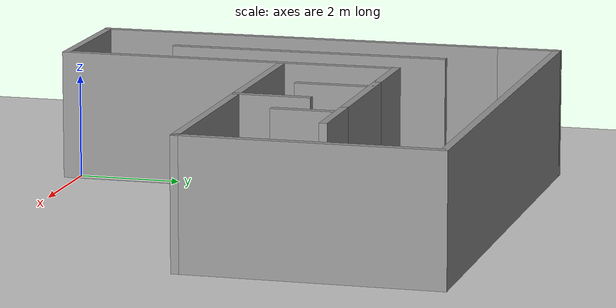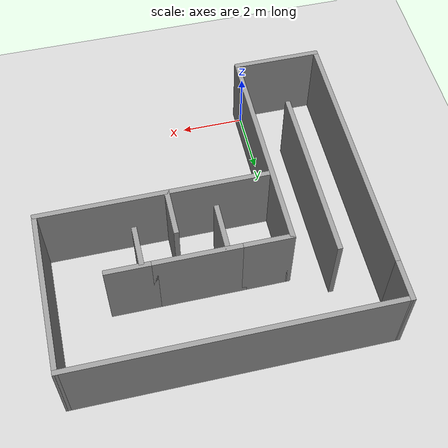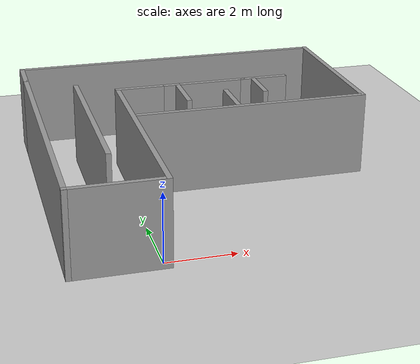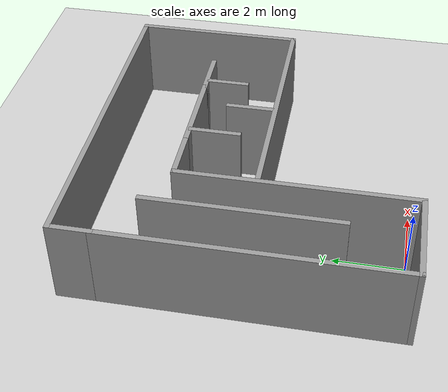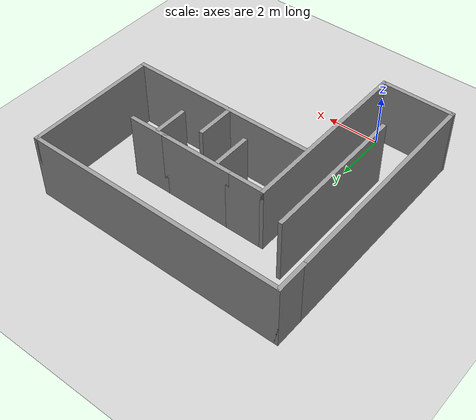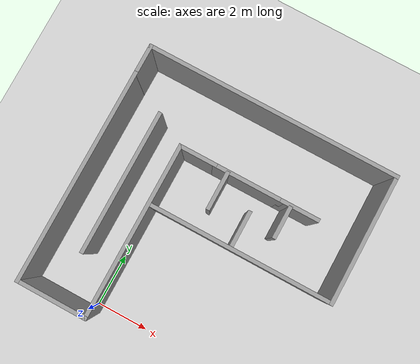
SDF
<sdf version="1.6">
 <world name="default">
  <light name="sun" type="directional">
   <pose>0 0 10 0 -0 0</pose>
   <diffuse>0.8 0.8 0.8 1</diffuse>
   <specular>0.2 0.2 0.2 1</specular>
   <attenuation>
    <range>1000</range>
    <constant>0.9</constant>
    <linear>0.01</linear>
    <quadratic>0.001</quadratic>
   </attenuation>
   <direction>-0.5 0.1 -0.9</direction>
  </light>
  <model name="ground_plane">
   <static>1</static>
   <link name="link">
    <collision name="collision">
     <geometry><plane><normal>0 0 1</normal><size>100 100</size></plane></geometry>
     <surface>
      <contact><collide_bitmask>65535</collide_bitmask></contact>
      <friction><ode><mu>100</mu><mu2>50</mu2></ode></friction>
     </surface>
    </collision>
    <visual name="visual">
     <cast_shadows>0</cast_shadows>
     <geometry><plane><normal>0 0 1</normal><size>100 100</size></plane></geometry>
     <material>
      <script><uri>file://media/materials/scripts/gazebo.material</uri><name>Gazebo/Grey</name></script>
     </material>
    </visual>
   </link>
  </model>
  <gravity>0 0 -9.8</gravity>
  <magnetic_field>6e-06 2.3e-05 -4.2e-05</magnetic_field>
  <atmosphere type="adiabatic"/>
  <physics name="default_physics" default="0" type="ode">
   <max_step_size>0.001</max_step_size>
   <real_time_factor>1</real_time_factor>
   <real_time_update_rate>1000</real_time_update_rate>
  </physics>
  <scene><ambient>0.4 0.4 0.4 1</ambient><background>0.7 0.7 0.7 1</background><shadows>1</shadows></scene>
  <audio><device>default</device></audio>
  <spherical_coordinates>
   <surface_model>EARTH_WGS84</surface_model>
   <latitude_deg>0</latitude_deg>
   <longitude_deg>0</longitude_deg>
   <elevation>0</elevation>
   <heading_deg>0</heading_deg>
  </spherical_coordinates>
  <model name="Maze_border">
   <pose>2.31556 4.37625 0 0 -0 0</pose>
   <link name="Wall_11">
    <collision name="Wall_11_Collision">
     <geometry><box><size>6.75 0.15 2.5</size></box></geometry>
     <pose>0 0 1.25 0 -0 0</pose>
    </collision>
    <visual name="Wall_11_Visual">
     <pose>0 0 1.25 0 -0 0</pose>
     <geometry><box><size>6.75 0.15 2.5</size></box></geometry>
     <material>
      <script><uri>file://media/materials/scripts/gazebo.material</uri><name>Gazebo/Grey</name></script>
      <ambient>1 1 1 1</ambient>
     </material>
     <meta><layer>0</layer></meta>
    </visual>
    <pose>-2.2 -1.3 0 0 -0 1.5708</pose>
   </link>
   <link name="Wall_12">
    <collision name="Wall_12_Collision">
     <geometry><box><size>1.5 0.15 2.5</size></box></geometry>
     <pose>0 0 1.25 0 -0 0</pose>
    </collision>
    <visual name="Wall_12_Visual">
     <pose>0 0 1.25 0 -0 0</pose>
     <geometry><box><size>1.5 0.15 2.5</size></box></geometry>
     <material>
      <script><uri>file://media/materials/scripts/gazebo.material</uri><name>Gazebo/Grey</name></script>
      <ambient>1 1 1 1</ambient>
     </material>
     <meta><layer>0</layer></meta>
    </visual>
    <pose>-1.525 2 0 0 -0 0</pose>
   </link>
   <link name="Wall_13">
    <collision name="Wall_13_Collision">
     <geometry><box><size>2.75 0.15 2.5</size></box></geometry>
     <pose>0 0 1.25 0 -0 0</pose>
    </collision>
    <visual name="Wall_13_Visual">
     <pose>0 0 1.25 0 -0 0</pose>
     <geometry><box><size>2.75 0.15 2.5</size></box></geometry>
     <material>
      <script><uri>file://media/materials/scripts/gazebo.material</uri><name>Gazebo/Grey</name></script>
      <ambient>1 1 1 1</ambient>
     </material>
     <meta><layer>0</layer></meta>
    </visual>
    <pose>0.45 2 0 0 -0 0</pose>
   </link>
   <link name="Wall_16">
    <collision name="Wall_16_Collision">
     <geometry><box><size>1.25 0.15 2.5</size></box></geometry>
     <pose>0 0 1.25 0 -0 0</pose>
    </collision>
    <visual name="Wall_16_Visual">
     <pose>0 0 1.25 0 -0 0</pose>
     <geometry><box><size>1.25 0.15 2.5</size></box></geometry>
     <material>
      <script><uri>file://media/materials/scripts/gazebo.material</uri><name>Gazebo/Grey</name></script>
      <ambient>1 1 1 1</ambient>
     </material>
     <meta><layer>0</layer></meta>
    </visual>
    <pose>-4.8 4.05 0 0 -0 1.5708</pose>
   </link>
   <link name="Wall_17">
    <collision name="Wall_17_Collision">
     <geometry><box><size>9.75 0.15 2.5</size></box></geometry>
     <pose>0 0 1.25 0 -0 0</pose>
    </collision>
    <visual name="Wall_17_Visual">
     <pose>0 0 1.25 0 -0 0</pose>
     <geometry><box><size>9.75 0.15 2.5</size></box></geometry>
     <material>
      <script><uri>file://media/materials/scripts/gazebo.material</uri><name>Gazebo/Grey</name></script>
      <ambient>1 1 1 1</ambient>
     </material>
     <meta><layer>0</layer></meta>
    </visual>
    <pose>0 4.6 0 0 -0 0</pose>
   </link>
   <link name="Wall_18">
    <collision name="Wall_18_Collision">
     <geometry><box><size>5 0.15 2.5</size></box></geometry>
     <pose>0 0 1.25 0 -0 0</pose>
    </collision>
    <visual name="Wall_18_Visual">
     <pose>0 0 1.25 0 -0 0</pose>
     <geometry><box><size>5 0.15 2.5</size></box></geometry>
     <material>
      <script><uri>file://media/materials/scripts/gazebo.material</uri><name>Gazebo/Grey</name></script>
      <ambient>1 1 1 1</ambient>
     </material>
     <meta><layer>0</layer></meta>
    </visual>
    <pose>4.8 2.175 0 0 -0 -1.5708</pose>
   </link>
   <link name="Wall_19">
    <collision name="Wall_19_Collision">
     <geometry><box><size>7 0.15 2.5</size></box></geometry>
     <pose>0 0 1.25 0 -0 0</pose>
    </collision>
    <visual name="Wall_19_Visual">
     <pose>0 0 1.25 0 -0 0</pose>
     <geometry><box><size>7 0.15 2.5</size></box></geometry>
     <material>
      <script><uri>file://media/materials/scripts/gazebo.material</uri><name>Gazebo/Grey</name></script>
      <ambient>1 1 1 1</ambient>
     </material>
     <meta><layer>0</layer></meta>
    </visual>
    <pose>1.375 -0.25 0 0 -0 3.14159</pose>
   </link>
   <link name="Wall_21">
    <collision name="Wall_21_Collision">
     <geometry><box><size>1.5 0.15 2.5</size></box></geometry>
     <pose>0 0 1.25 0 -0 0</pose>
    </collision>
    <visual name="Wall_21_Visual">
     <pose>0 0 1.25 0 -0 0</pose>
     <geometry><box><size>1.5 0.15 2.5</size></box></geometry>
     <material>
      <script><uri>file://media/materials/scripts/gazebo.material</uri><name>Gazebo/Grey</name></script>
      <ambient>1 1 1 1</ambient>
     </material>
     <meta><layer>0</layer></meta>
    </visual>
    <pose>-0.338488 1.27142 0 0 -0 -1.5708</pose>
   </link>
   <link name="Wall_23">
    <collision name="Wall_23_Collision">
     <geometry><box><size>1.5 0.15 2.5</size></box></geometry>
     <pose>0 0 1.25 0 -0 0</pose>
    </collision>
    <visual name="Wall_23_Visual">
     <pose>0 0 1.25 0 -0 0</pose>
     <geometry><box><size>1.5 0.15 2.5</size></box></geometry>
     <material>
      <script><uri>file://media/materials/scripts/gazebo.material</uri><name>Gazebo/Grey</name></script>
      <ambient>1 1 1 1</ambient>
     </material>
     <meta><layer>0</layer></meta>
    </visual>
    <pose>0.956091 0.436821 0 0 -0 1.5708</pose>
   </link>
   <link name="Wall_25">
    <collision name="Wall_25_Collision">
     <geometry><box><size>1.5 0.15 2.5</size></box></geometry>
     <pose>0 0 1.25 0 -0 0</pose>
    </collision>
    <visual name="Wall_25_Visual">
     <pose>0 0 1.25 0 -0 0</pose>
     <geometry><box><size>1.5 0.15 2.5</size></box></geometry>
     <material>
      <script><uri>file://media/materials/scripts/gazebo.material</uri><name>Gazebo/Grey</name></script>
      <ambient>1 1 1 1</ambient>
     </material>
     <meta><layer>0</layer></meta>
    </visual>
    <pose>2.425 2 0 0 -0 0</pose>
   </link>
   <link name="Wall_27">
    <collision name="Wall_27_Collision">
     <geometry><box><size>1.25 0.15 2.5</size></box></geometry>
     <pose>0 0 1.25 0 -0 0</pose>
    </collision>
    <visual name="Wall_27_Visual">
     <pose>0 0 1.25 0 -0 0</pose>
     <geometry><box><size>1.25 0.15 2.5</size></box></geometry>
     <material>
      <script><uri>file://media/materials/scripts/gazebo.material</uri><name>Gazebo/Grey</name></script>
      <ambient>1 1 1 1</ambient>
     </material>
     <meta><layer>0</layer></meta>
    </visual>
    <pose>2.08885 1.35597 0 0 -0 -1.5708</pose>
   </link>
   <link name="Wall_29">
    <collision name="Wall_29_Collision">
     <geometry><box><size>5.5 0.15 2.5</size></box></geometry>
     <pose>0 0 1.25 0 -0 0</pose>
    </collision>
    <visual name="Wall_29_Visual">
     <pose>0 0 1.25 0 -0 0</pose>
     <geometry><box><size>5.5 0.15 2.5</size></box></geometry>
     <material>
      <script><uri>file://media/materials/scripts/gazebo.material</uri><name>Gazebo/Grey</name></script>
      <ambient>1 1 1 1</ambient>
     </material>
     <meta><layer>0</layer></meta>
    </visual>
    <pose>-3.37266 -0.040833 0 0 -0 -1.5708</pose>
   </link>
   <link name="Wall_8">
    <collision name="Wall_8_Collision">
     <geometry><box><size>2.75 0.15 2.5</size></box></geometry>
     <pose>0 0 1.25 0 -0 0</pose>
    </collision>
    <visual name="Wall_8_Visual">
     <pose>0 0 1.25 0 -0 0</pose>
     <geometry><box><size>2.75 0.15 2.5</size></box></geometry>
     <material>
      <script><uri>file://media/materials/scripts/gazebo.material</uri><name>Gazebo/Grey</name></script>
      <ambient>1 1 1 1</ambient>
     </material>
     <meta><layer>0</layer></meta>
    </visual>
    <pose>-3.5 -4.6 0 0 -0 3.14159</pose>
   </link>
   <link name="Wall_9">
    <collision name="Wall_9_Collision">
     <geometry><box><size>8.25 0.15 2.5</size></box></geometry>
     <pose>0 0 1.25 0 -0 0</pose>
    </collision>
    <visual name="Wall_9_Visual">
     <pose>0 0 1.25 0 -0 0</pose>
     <geometry><box><size>8.25 0.15 2.5</size></box></geometry>
     <material>
      <script><uri>file://media/materials/scripts/gazebo.material</uri><name>Gazebo/Grey</name></script>
      <ambient>1 1 1 1</ambient>
     </material>
     <meta><layer>0</layer></meta>
    </visual>
    <pose>-4.8 -0.55 0 0 -0 1.5708</pose>
   </link>
   <static>1</static>
  </model>
 </world>
</sdf>
